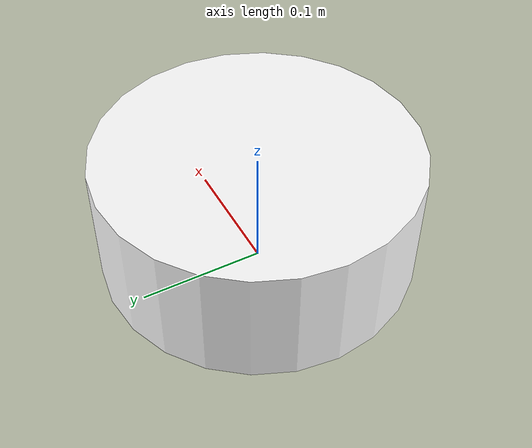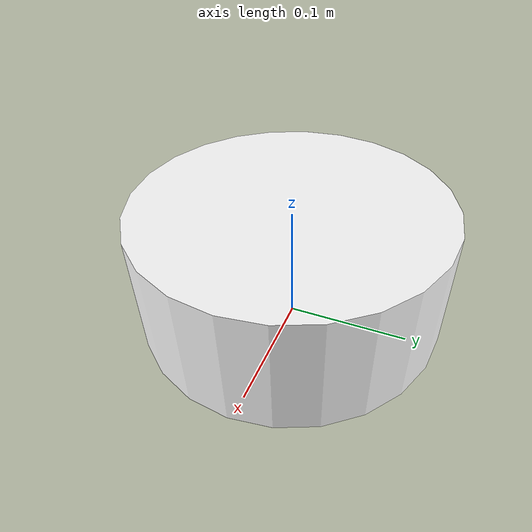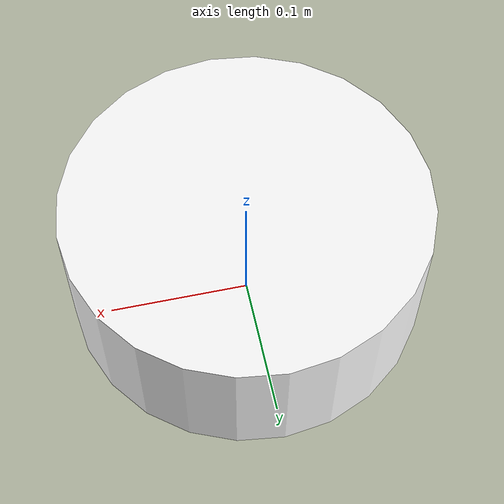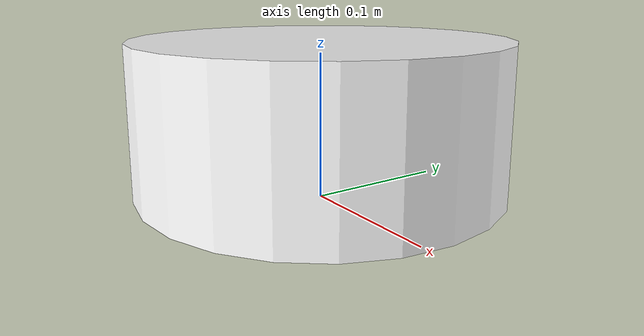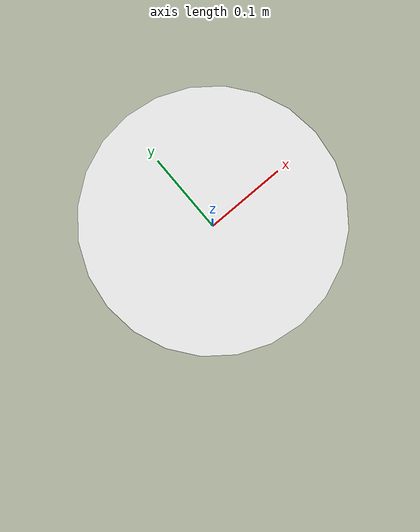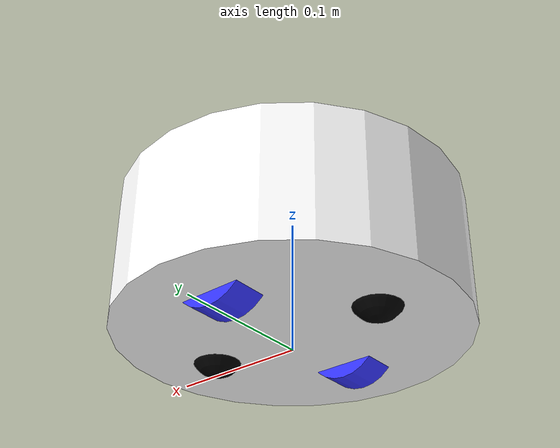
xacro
<?xml version="1.0"?>
<robot xmlns:xacro="http://www.ros.org/wiki/xacro" >

    <xacro:include filename="inertial_macros.xacro"/>

    <material name="white">
        <color rgba="1 1 1 1" />
    </material>

    <material name="orange">
        <color rgba="1 0.3 0.1 1"/>
    </material>

    <material name="blue">
        <color rgba="0.2 0.2 1 1"/>
    </material>

    <material name="black">
        <color rgba="0 0 0 1"/>
    </material>

    <!-- BASE LINK -->

    <link name="base_link">

    </link>

    <joint name="base_footprint_joint" type="fixed">
        <parent link="base_link"/>
        <child link="base_footprint"/>
        <origin xyz="0 0 0" rpy="0 0 0"/>
    </joint>

    <link name="base_footprint">
    </link>

    <!-- CHASSIS LINK -->

    <joint name="chassis_joint" type="fixed">
        <parent link="base_link"/>
        <child link="chassis"/>
        <origin xyz="0 0 0.06"/>
    </joint>

    <link name="chassis">
        <visual>
            <geometry>
                <cylinder radius="0.125" length="0.1"/>
            </geometry>
            <material name="white"/>
        </visual>
        <collision>
            <geometry>
                <cylinder radius="0.125" length="0.1"/>
            </geometry>
        </collision>
        <xacro:inertial_box mass="0.5" x="0.3" y="0.3" z="0.15">
            <origin xyz="0 0 0" rpy="0 0 0"/>
        </xacro:inertial_box>
        <xacro:inertial_cylinder mass="0.1" length="0.1" radius="0.125">
            <origin xyz="0 0 0" rpy="0 0 0"/>
        </xacro:inertial_cylinder>
    </link>

    <gazebo reference="chassis">
        <material>Gazebo/White</material>
    </gazebo>

    <!-- LEFT WHEEL LINK -->

    <joint name="left_wheel_joint" type="fixed">
        <parent link="base_link"/>
        <child link="left_wheel"/>
        <origin xyz="0 0.07 0.0315" rpy="-${pi/2} 0 0" />
        <axis xyz="0 0 1"/>
    </joint>

    <link name="left_wheel">
        <visual>
            <geometry>
                <cylinder radius="0.0315" length="0.025"/>
            </geometry>
            <material name="blue"/>
        </visual>
        <collision>
            <geometry>
                <cylinder radius="0.0315" length="0.025"/>
            </geometry>
        </collision>
        <xacro:inertial_cylinder mass="0.1" length="0.025" radius="0.0315">
            <origin xyz="0 0 0" rpy="0 0 0"/>
        </xacro:inertial_cylinder>
    </link>

    <gazebo reference="left_wheel">
        <material>Gazebo/Blue</material>
    </gazebo>

    <!-- RIGHT WHEEL LINK -->

    <joint name="right_wheel_joint" type="fixed">
        <parent link="base_link"/>
        <child link="right_wheel"/>
        <origin xyz="0 -0.07 0.0315" rpy="${pi/2} 0 0" />
        <axis xyz="0 0 -1"/>
    </joint>

    <link name="right_wheel">
        <visual>
            <geometry>
                <cylinder radius="0.0315" length="0.025"/>
            </geometry>
            <material name="blue"/>
        </visual>
        <collision>
            <geometry>
                <cylinder radius="0.0315" length="0.025"/>
            </geometry>
        </collision>
        <xacro:inertial_cylinder mass="0.1" length="0.025" radius="0.0315">
            <origin xyz="0 0 0" rpy="0 0 0"/>
        </xacro:inertial_cylinder>
    </link>

    <gazebo reference="right_wheel">
        <material>Gazebo/Blue</material>
    </gazebo>

    <!-- CASTER WHEEL LINK -->

    <joint name="caster_wheel_joint1" type="fixed">
        <parent link="chassis"/>
        <child link="caster_wheel1"/>
        <origin xyz="0.07 0 -0.04"/>
    </joint>

    <link name="caster_wheel1">
        <visual>
            <geometry>
                <sphere radius="0.02"/>
            </geometry>
            <material name="black"/>
        </visual>
        <collision>
            <geometry>
                <sphere radius="0.02"/>
            </geometry>
        </collision>
        <xacro:inertial_sphere mass="0.1" radius="0.02">
            <origin xyz="0 0 0" rpy="0 0 0"/>
        </xacro:inertial_sphere>
    </link>

    <gazebo reference="caster_wheel2">
        <material>Gazebo/Black</material>
        <mu1 value="0.001"/>
        <mu2 value="0.001"/>
    </gazebo>
    <joint name="caster_wheel_joint2" type="fixed">
        <parent link="chassis"/>
        <child link="caster_wheel2"/>
        <origin xyz="-0.07 0 -0.04"/>
    </joint>

    <link name="caster_wheel2">
        <visual>
            <geometry>
                <sphere radius="0.02"/>
            </geometry>
            <material name="black"/>
        </visual>
        <collision>
            <geometry>
                <sphere radius="0.02"/>
            </geometry>
        </collision>
        <xacro:inertial_sphere mass="0.1" radius="0.02">
            <origin xyz="0 0 0" rpy="0 0 0"/>
        </xacro:inertial_sphere>
    </link>

    <gazebo reference="caster_wheel2">
        <material>Gazebo/Black</material>
        <mu1 value="0.001"/>
        <mu2 value="0.001"/>
    </gazebo>
</robot>
